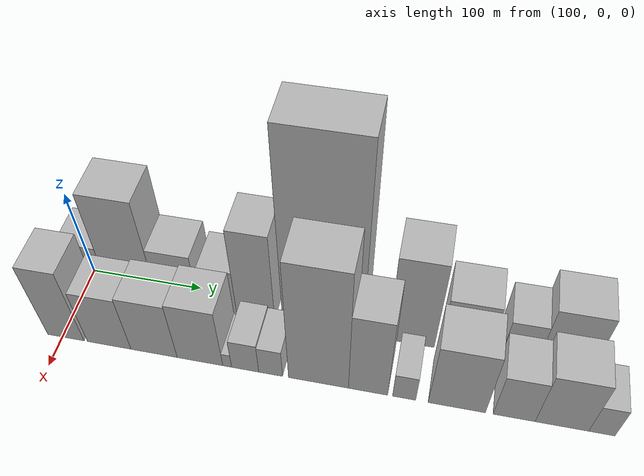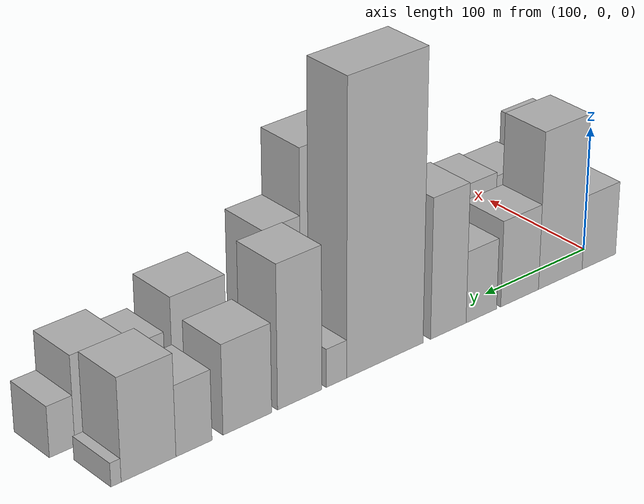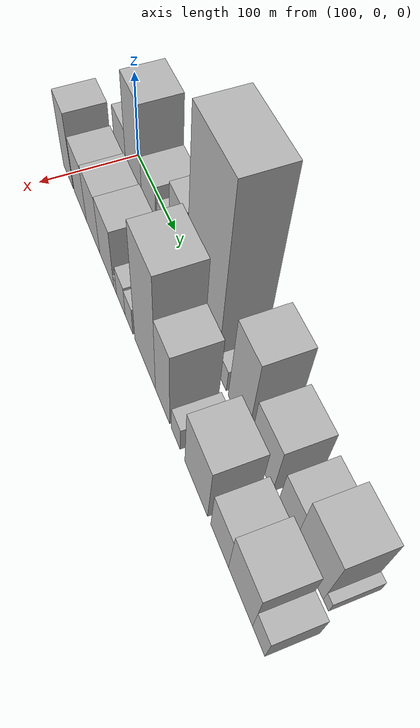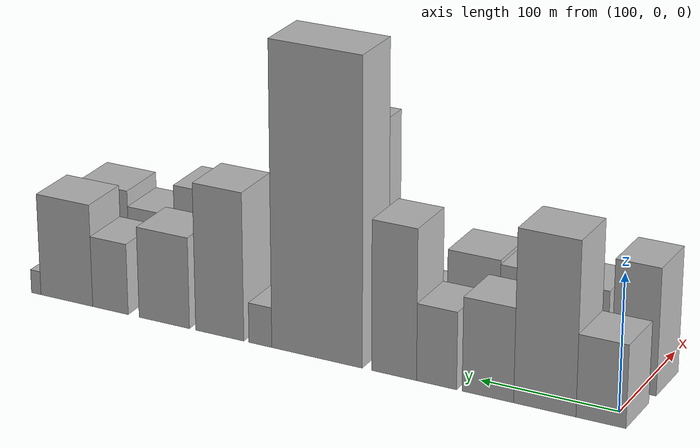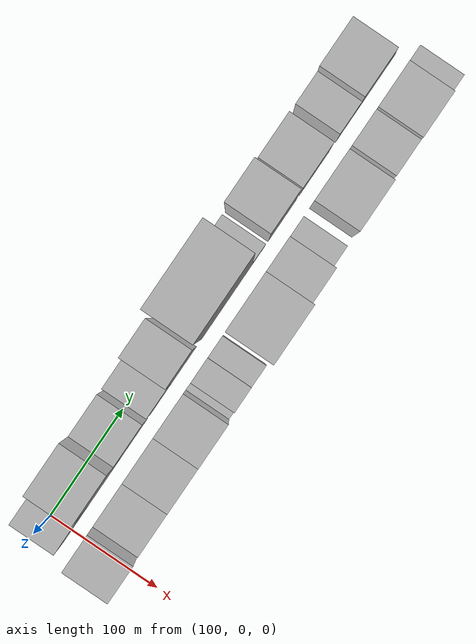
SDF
<sdf version="1.6">
 <world name="default">
  <model name="building_13">
   <static>1</static>
   <pose>100.0000 4.9502 0 0.000000 0.000000 0.000000</pose>
   <link name="link">
    <pose>0 0 30.00 0 0 0</pose>
    <collision name="collision"><geometry><box><size>40.0000 35.0523 60.0000</size></box></geometry></collision>
    <visual name="visual">
     <cast_shadows>0</cast_shadows>
     <geometry><box><size>40.0000 35.0523 60.0000</size></box></geometry>
     <material>
      <script>
       <uri>model://HANNAS_wall/materials/scripts</uri>
       <uri>model://HANNAS_wall/materials/textures</uri>
       <name>vrc/HANNAS_wall</name>
      </script>
     </material>
    </visual>
   </link>
  </model>
  <model name="building_14">
   <static>1</static>
   <pose>100.0000 44.7409 0 0.000000 0.000000 0.000000</pose>
   <link name="link">
    <pose>0 0 63.00 0 0 0</pose>
    <collision name="collision"><geometry><box><size>40.0000 44.5290 126.0000</size></box></geometry></collision>
    <visual name="visual">
     <cast_shadows>0</cast_shadows>
     <geometry><box><size>40.0000 44.5290 126.0000</size></box></geometry>
     <material>
      <script>
       <uri>model://HANNAS_wall/materials/scripts</uri>
       <uri>model://HANNAS_wall/materials/textures</uri>
       <name>vrc/HANNAS_wall</name>
      </script>
     </material>
    </visual>
   </link>
  </model>
  <model name="building_15">
   <static>1</static>
   <pose>100.0000 85.7676 0 0.000000 0.000000 0.000000</pose>
   <link name="link">
    <pose>0 0 34.50 0 0 0</pose>
    <collision name="collision"><geometry><box><size>40.0000 37.5246 69.0000</size></box></geometry></collision>
    <visual name="visual">
     <cast_shadows>0</cast_shadows>
     <geometry><box><size>40.0000 37.5246 69.0000</size></box></geometry>
     <material>
      <script>
       <uri>model://HANNAS_wall/materials/scripts</uri>
       <uri>model://HANNAS_wall/materials/textures</uri>
       <name>vrc/HANNAS_wall</name>
      </script>
     </material>
    </visual>
   </link>
  </model>
  <model name="building_16">
   <static>1</static>
   <pose>100.0000 123.3544 0 0.000000 0.000000 0.000000</pose>
   <link name="link">
    <pose>0 0 28.50 0 0 0</pose>
    <collision name="collision"><geometry><box><size>40.0000 29.6488 57.0000</size></box></geometry></collision>
    <visual name="visual">
     <cast_shadows>0</cast_shadows>
     <geometry><box><size>40.0000 29.6488 57.0000</size></box></geometry>
     <material>
      <script>
       <uri>model://HANNAS_wall/materials/scripts</uri>
       <uri>model://HANNAS_wall/materials/textures</uri>
       <name>vrc/HANNAS_wall</name>
      </script>
     </material>
    </visual>
   </link>
  </model>
  <model name="building_17">
   <static>1</static>
   <pose>100.0000 155.0574 0 0.000000 0.000000 0.000000</pose>
   <link name="link">
    <pose>0 0 55.50 0 0 0</pose>
    <collision name="collision"><geometry><box><size>40.0000 33.7574 111.0000</size></box></geometry></collision>
    <visual name="visual">
     <cast_shadows>0</cast_shadows>
     <geometry><box><size>40.0000 33.7574 111.0000</size></box></geometry>
     <material>
      <script>
       <uri>model://HANNAS_wall/materials/scripts</uri>
       <uri>model://HANNAS_wall/materials/textures</uri>
       <name>vrc/HANNAS_wall</name>
      </script>
     </material>
    </visual>
   </link>
  </model>
  <model name="building_18">
   <static>1</static>
   <pose>100.0000 213.8398 0 0.000000 0.000000 0.000000</pose>
   <link name="link">
    <pose>0 0 112.50 0 0 0</pose>
    <collision name="collision"><geometry><box><size>40.0000 69.8074 225.0000</size></box></geometry></collision>
    <visual name="visual">
     <cast_shadows>0</cast_shadows>
     <geometry><box><size>40.0000 69.8074 225.0000</size></box></geometry>
     <material>
      <script>
       <uri>model://HANNAS_wall/materials/scripts</uri>
       <uri>model://HANNAS_wall/materials/textures</uri>
       <name>vrc/HANNAS_wall</name>
      </script>
     </material>
    </visual>
   </link>
  </model>
  <model name="building_19">
   <static>1</static>
   <pose>100.0000 257.7126 0 0.000000 0.000000 0.000000</pose>
   <link name="link">
    <pose>0 0 15.00 0 0 0</pose>
    <collision name="collision"><geometry><box><size>40.0000 17.9382 30.0000</size></box></geometry></collision>
    <visual name="visual">
     <cast_shadows>0</cast_shadows>
     <geometry><box><size>40.0000 17.9382 30.0000</size></box></geometry>
     <material>
      <script>
       <uri>model://HANNAS_wall/materials/scripts</uri>
       <uri>model://HANNAS_wall/materials/textures</uri>
       <name>vrc/HANNAS_wall</name>
      </script>
     </material>
    </visual>
   </link>
  </model>
  <model name="building_20">
   <static>1</static>
   <pose>100.0000 289.8383 0 0.000000 0.000000 0.000000</pose>
   <link name="link">
    <pose>0 0 55.50 0 0 0</pose>
    <collision name="collision"><geometry><box><size>40.0000 38.3132 111.0000</size></box></geometry></collision>
    <visual name="visual">
     <cast_shadows>0</cast_shadows>
     <geometry><box><size>40.0000 38.3132 111.0000</size></box></geometry>
     <material>
      <script>
       <uri>model://HANNAS_wall/materials/scripts</uri>
       <uri>model://HANNAS_wall/materials/textures</uri>
       <name>vrc/HANNAS_wall</name>
      </script>
     </material>
    </visual>
   </link>
  </model>
  <model name="building_21">
   <static>1</static>
   <pose>100.0000 334.4318 0 0.000000 0.000000 0.000000</pose>
   <link name="link">
    <pose>0 0 34.50 0 0 0</pose>
    <collision name="collision"><geometry><box><size>40.0000 40.8740 69.0000</size></box></geometry></collision>
    <visual name="visual">
     <cast_shadows>0</cast_shadows>
     <geometry><box><size>40.0000 40.8740 69.0000</size></box></geometry>
     <material>
      <script>
       <uri>model://HANNAS_wall/materials/scripts</uri>
       <uri>model://HANNAS_wall/materials/textures</uri>
       <name>vrc/HANNAS_wall</name>
      </script>
     </material>
    </visual>
   </link>
  </model>
  <model name="building_22">
   <static>1</static>
   <pose>100.0000 378.5405 0 0.000000 0.000000 0.000000</pose>
   <link name="link">
    <pose>0 0 27.00 0 0 0</pose>
    <collision name="collision"><geometry><box><size>40.0000 29.3434 54.0000</size></box></geometry></collision>
    <visual name="visual">
     <cast_shadows>0</cast_shadows>
     <geometry><box><size>40.0000 29.3434 54.0000</size></box></geometry>
     <material>
      <script>
       <uri>model://HANNAS_wall/materials/scripts</uri>
       <uri>model://HANNAS_wall/materials/textures</uri>
       <name>vrc/HANNAS_wall</name>
      </script>
     </material>
    </visual>
   </link>
  </model>
  <model name="building_23">
   <static>1</static>
   <pose>100.0000 414.9408 0 0.000000 0.000000 0.000000</pose>
   <link name="link">
    <pose>0 0 39.00 0 0 0</pose>
    <collision name="collision"><geometry><box><size>40.0000 43.4571 78.0000</size></box></geometry></collision>
    <visual name="visual">
     <cast_shadows>0</cast_shadows>
     <geometry><box><size>40.0000 43.4571 78.0000</size></box></geometry>
     <material>
      <script>
       <uri>model://HANNAS_wall/materials/scripts</uri>
       <uri>model://HANNAS_wall/materials/textures</uri>
       <name>vrc/HANNAS_wall</name>
      </script>
     </material>
    </visual>
   </link>
  </model>
  <model name="building_24">
   <static>1</static>
   <pose>100.0000 440.6839 0 0.000000 0.000000 0.000000</pose>
   <link name="link">
    <pose>0 0 9.00 0 0 0</pose>
    <collision name="collision"><geometry><box><size>40.0000 8.0292 18.0000</size></box></geometry></collision>
    <visual name="visual">
     <cast_shadows>0</cast_shadows>
     <geometry><box><size>40.0000 8.0292 18.0000</size></box></geometry>
     <material>
      <script>
       <uri>model://HANNAS_wall/materials/scripts</uri>
       <uri>model://HANNAS_wall/materials/textures</uri>
       <name>vrc/HANNAS_wall</name>
      </script>
     </material>
    </visual>
   </link>
  </model>
  <model name="building_37">
   <static>1</static>
   <pose>152.0000 3.2411 0 0.000000 0.000000 0.000000</pose>
   <link name="link">
    <pose>0 0 46.50 0 0 0</pose>
    <collision name="collision"><geometry><box><size>40.0000 32.5826 93.0000</size></box></geometry></collision>
    <visual name="visual">
     <cast_shadows>0</cast_shadows>
     <geometry><box><size>40.0000 32.5826 93.0000</size></box></geometry>
     <material>
      <script>
       <uri>model://HANNAS_wall/materials/scripts</uri>
       <uri>model://HANNAS_wall/materials/textures</uri>
       <name>vrc/HANNAS_wall</name>
      </script>
     </material>
    </visual>
   </link>
  </model>
  <model name="building_38">
   <static>1</static>
   <pose>152.0000 41.7942 0 0.000000 0.000000 0.000000</pose>
   <link name="link">
    <pose>0 0 34.50 0 0 0</pose>
    <collision name="collision"><geometry><box><size>40.0000 38.5236 69.0000</size></box></geometry></collision>
    <visual name="visual">
     <cast_shadows>0</cast_shadows>
     <geometry><box><size>40.0000 38.5236 69.0000</size></box></geometry>
     <material>
      <script>
       <uri>model://HANNAS_wall/materials/scripts</uri>
       <uri>model://HANNAS_wall/materials/textures</uri>
       <name>vrc/HANNAS_wall</name>
      </script>
     </material>
    </visual>
   </link>
  </model>
  <model name="building_39">
   <static>1</static>
   <pose>152.0000 81.2399 0 0.000000 0.000000 0.000000</pose>
   <link name="link">
    <pose>0 0 36.00 0 0 0</pose>
    <collision name="collision"><geometry><box><size>40.0000 40.3678 72.0000</size></box></geometry></collision>
    <visual name="visual">
     <cast_shadows>0</cast_shadows>
     <geometry><box><size>40.0000 40.3678 72.0000</size></box></geometry>
     <material>
      <script>
       <uri>model://HANNAS_wall/materials/scripts</uri>
       <uri>model://HANNAS_wall/materials/textures</uri>
       <name>vrc/HANNAS_wall</name>
      </script>
     </material>
    </visual>
   </link>
  </model>
  <model name="building_40">
   <static>1</static>
   <pose>152.0000 121.0293 0 0.000000 0.000000 0.000000</pose>
   <link name="link">
    <pose>0 0 37.50 0 0 0</pose>
    <collision name="collision"><geometry><box><size>40.0000 39.2111 75.0000</size></box></geometry></collision>
    <visual name="visual">
     <cast_shadows>0</cast_shadows>
     <geometry><box><size>40.0000 39.2111 75.0000</size></box></geometry>
     <material>
      <script>
       <uri>model://HANNAS_wall/materials/scripts</uri>
       <uri>model://HANNAS_wall/materials/textures</uri>
       <name>vrc/HANNAS_wall</name>
      </script>
     </material>
    </visual>
   </link>
  </model>
  <model name="building_41">
   <static>1</static>
   <pose>152.0000 144.3680 0 0.000000 0.000000 0.000000</pose>
   <link name="link">
    <pose>0 0 9.00 0 0 0</pose>
    <collision name="collision"><geometry><box><size>40.0000 7.4662 18.0000</size></box></geometry></collision>
    <visual name="visual">
     <cast_shadows>0</cast_shadows>
     <geometry><box><size>40.0000 7.4662 18.0000</size></box></geometry>
     <material>
      <script>
       <uri>model://HANNAS_wall/materials/scripts</uri>
       <uri>model://HANNAS_wall/materials/textures</uri>
       <name>vrc/HANNAS_wall</name>
      </script>
     </material>
    </visual>
   </link>
  </model>
  <model name="building_42">
   <static>1</static>
   <pose>152.0000 159.5786 0 0.000000 0.000000 0.000000</pose>
   <link name="link">
    <pose>0 0 19.50 0 0 0</pose>
    <collision name="collision"><geometry><box><size>40.0000 22.9551 39.0000</size></box></geometry></collision>
    <visual name="visual">
     <cast_shadows>0</cast_shadows>
     <geometry><box><size>40.0000 22.9551 39.0000</size></box></geometry>
     <material>
      <script>
       <uri>model://HANNAS_wall/materials/scripts</uri>
       <uri>model://HANNAS_wall/materials/textures</uri>
       <name>vrc/HANNAS_wall</name>
      </script>
     </material>
    </visual>
   </link>
  </model>
  <model name="building_43">
   <static>1</static>
   <pose>152.0000 181.0502 0 0.000000 0.000000 0.000000</pose>
   <link name="link">
    <pose>0 0 18.00 0 0 0</pose>
    <collision name="collision"><geometry><box><size>40.0000 19.9882 36.0000</size></box></geometry></collision>
    <visual name="visual">
     <cast_shadows>0</cast_shadows>
     <geometry><box><size>40.0000 19.9882 36.0000</size></box></geometry>
     <material>
      <script>
       <uri>model://HANNAS_wall/materials/scripts</uri>
       <uri>model://HANNAS_wall/materials/textures</uri>
       <name>vrc/HANNAS_wall</name>
      </script>
     </material>
    </visual>
   </link>
  </model>
  <model name="building_44">
   <static>1</static>
   <pose>152.0000 220.8196 0 0.000000 0.000000 0.000000</pose>
   <link name="link">
    <pose>0 0 76.50 0 0 0</pose>
    <collision name="collision"><geometry><box><size>40.0000 49.5505 153.0000</size></box></geometry></collision>
    <visual name="visual">
     <cast_shadows>0</cast_shadows>
     <geometry><box><size>40.0000 49.5505 153.0000</size></box></geometry>
     <material>
      <script>
       <uri>model://HANNAS_wall/materials/scripts</uri>
       <uri>model://HANNAS_wall/materials/textures</uri>
       <name>vrc/HANNAS_wall</name>
      </script>
     </material>
    </visual>
   </link>
  </model>
  <model name="building_45">
   <static>1</static>
   <pose>152.0000 261.5684 0 0.000000 0.000000 0.000000</pose>
   <link name="link">
    <pose>0 0 51.00 0 0 0</pose>
    <collision name="collision"><geometry><box><size>40.0000 31.9472 102.0000</size></box></geometry></collision>
    <visual name="visual">
     <cast_shadows>0</cast_shadows>
     <geometry><box><size>40.0000 31.9472 102.0000</size></box></geometry>
     <material>
      <script>
       <uri>model://HANNAS_wall/materials/scripts</uri>
       <uri>model://HANNAS_wall/materials/textures</uri>
       <name>vrc/HANNAS_wall</name>
      </script>
     </material>
    </visual>
   </link>
  </model>
  <model name="building_46">
   <static>1</static>
   <pose>152.0000 290.8399 0 0.000000 0.000000 0.000000</pose>
   <link name="link">
    <pose>0 0 16.50 0 0 0</pose>
    <collision name="collision"><geometry><box><size>40.0000 18.5958 33.0000</size></box></geometry></collision>
    <visual name="visual">
     <cast_shadows>0</cast_shadows>
     <geometry><box><size>40.0000 18.5958 33.0000</size></box></geometry>
     <material>
      <script>
       <uri>model://HANNAS_wall/materials/scripts</uri>
       <uri>model://HANNAS_wall/materials/textures</uri>
       <name>vrc/HANNAS_wall</name>
      </script>
     </material>
    </visual>
   </link>
  </model>
  <model name="building_47">
   <static>1</static>
   <pose>152.0000 332.8288 0 0.000000 0.000000 0.000000</pose>
   <link name="link">
    <pose>0 0 40.50 0 0 0</pose>
    <collision name="collision"><geometry><box><size>40.0000 45.3821 81.0000</size></box></geometry></collision>
    <visual name="visual">
     <cast_shadows>0</cast_shadows>
     <geometry><box><size>40.0000 45.3821 81.0000</size></box></geometry>
     <material>
      <script>
       <uri>model://HANNAS_wall/materials/scripts</uri>
       <uri>model://HANNAS_wall/materials/textures</uri>
       <name>vrc/HANNAS_wall</name>
      </script>
     </material>
    </visual>
   </link>
  </model>
  <model name="building_48">
   <static>1</static>
   <pose>152.0000 377.8535 0 0.000000 0.000000 0.000000</pose>
   <link name="link">
    <pose>0 0 28.50 0 0 0</pose>
    <collision name="collision"><geometry><box><size>40.0000 32.6674 57.0000</size></box></geometry></collision>
    <visual name="visual">
     <cast_shadows>0</cast_shadows>
     <geometry><box><size>40.0000 32.6674 57.0000</size></box></geometry>
     <material>
      <script>
       <uri>model://HANNAS_wall/materials/scripts</uri>
       <uri>model://HANNAS_wall/materials/textures</uri>
       <name>vrc/HANNAS_wall</name>
      </script>
     </material>
    </visual>
   </link>
  </model>
  <model name="building_49">
   <static>1</static>
   <pose>152.0000 414.7850 0 0.000000 0.000000 0.000000</pose>
   <link name="link">
    <pose>0 0 34.50 0 0 0</pose>
    <collision name="collision"><geometry><box><size>40.0000 41.1956 69.0000</size></box></geometry></collision>
    <visual name="visual">
     <cast_shadows>0</cast_shadows>
     <geometry><box><size>40.0000 41.1956 69.0000</size></box></geometry>
     <material>
      <script>
       <uri>model://HANNAS_wall/materials/scripts</uri>
       <uri>model://HANNAS_wall/materials/textures</uri>
       <name>vrc/HANNAS_wall</name>
      </script>
     </material>
    </visual>
   </link>
  </model>
  <model name="building_50">
   <static>1</static>
   <pose>152.0000 445.3613 0 0.000000 0.000000 0.000000</pose>
   <link name="link">
    <pose>0 0 19.50 0 0 0</pose>
    <collision name="collision"><geometry><box><size>40.0000 19.9570 39.0000</size></box></geometry></collision>
    <visual name="visual">
     <cast_shadows>0</cast_shadows>
     <geometry><box><size>40.0000 19.9570 39.0000</size></box></geometry>
     <material>
      <script>
       <uri>model://HANNAS_wall/materials/scripts</uri>
       <uri>model://HANNAS_wall/materials/textures</uri>
       <name>vrc/HANNAS_wall</name>
      </script>
     </material>
    </visual>
   </link>
  </model>
 </world>
</sdf>
